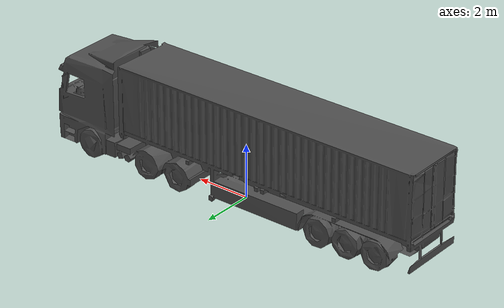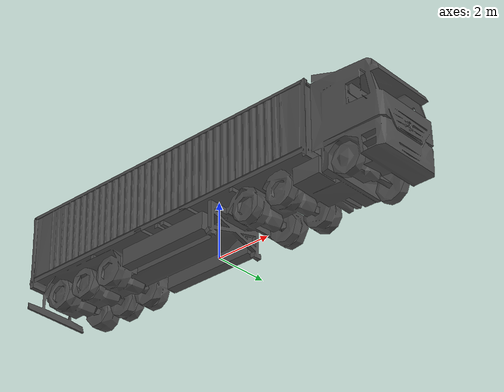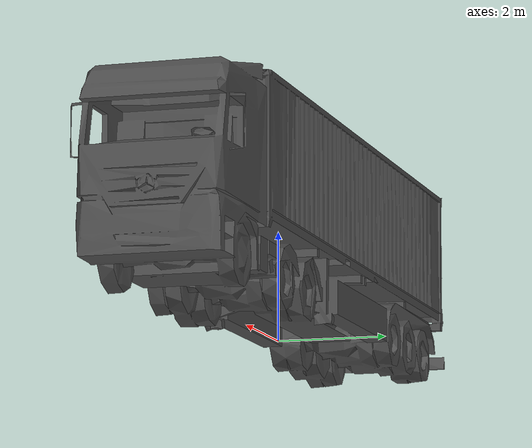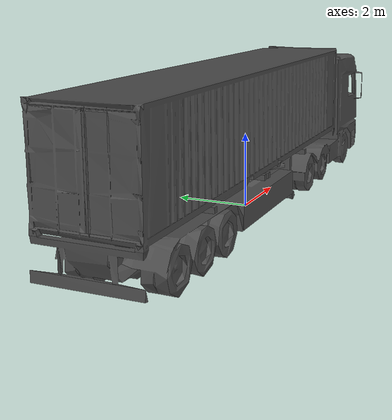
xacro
<?xml version="1.0"?>

<robot name="$(arg name)" xmlns:xacro="http://www.ros.org/wiki/xacro">

  <xacro:include filename="$(find iri_objects_description)/urdf/materials.xacro" />
  <xacro:include filename="$(find iri_objects_description)/urdf/truck/urdf.xacro" />
  <xacro:include filename="$(find iri_objects_description)/urdf/truck/gazebo.gazebo" />
  <xacro:truck_gazebo truck_name="$(arg name)"/>

</robot>

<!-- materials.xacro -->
<root xmlns:xacro="http://ros.org/wiki/xacro">
  <material name="black">
    <color rgba="0.15 0.15 0.15 1.0"/>
  </material>

  <material name="blue">
    <color rgba="0.17 0.3 0.56 1.0"/>
  </material>

  <material name="orange">
    <color rgba="0.93 0.44 0.01 1.0"/>
  </material>

  <material name="green">
    <color rgba="0.0 0.8 0.0 1.0"/>
  </material>

  <material name="grey">
    <color rgba="0.3 0.3 0.3 1.0"/>
  </material>

  <material name="grey2">
    <color rgba="0.7 0.7 0.7 1.0"/>
  </material>

  <material name="grey3">
    <color rgba="0.9 0.9 0.9 1.0"/>
  </material>

  <material name="red">
    <color rgba="0.8 0.0 0.0 1.0"/>
  </material>

  <material name="white">
    <color rgba="0.9 0.9 0.9 1.0"/>
  </material>
</root>

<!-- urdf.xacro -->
<root xmlns:xacro="http://ros.org/wiki/xacro">

  <xacro:property name="M_PI" value="3.1415926535897931" />
  <xacro:property name="LONG"   value="15.0" />
  <xacro:property name="WIDTH"  value="2.4" />
  <xacro:property name="HEIGHT" value="4.0" />

  <xacro:property name="BASE_LINK_HEIGHT" value="1.0" />

    <link name="base_footprint"/>

    <link name="base_link">
      <inertial>
        <mass value="1" />
        <origin xyz="0 0 0" />
        <inertia
          ixx="1.0" ixy="0.0" ixz="0.0"
          iyy="1.0" iyz="0.0"
          izz="1.0" />
       </inertial>
    </link>

    <joint name="base_footprint_to_base_link" type="fixed">
      <parent link="base_footprint"/>
      <child link="base_link"/>
      <origin xyz="0 0 ${BASE_LINK_HEIGHT}" rpy="0 0 0"/>
    </joint>

    <link name="body">
      <collision>
        <origin xyz="0 0 -${BASE_LINK_HEIGHT}" rpy="0 0 0"/>
        <geometry>
          <mesh filename="package://iri_objects_description/meshes/truck.stl"/>
        </geometry>
      </collision>
      <visual>
        <origin xyz="0 0 -${BASE_LINK_HEIGHT}" rpy="0 0 0"/>
        <geometry>
          <mesh filename="package://iri_objects_description/meshes/truck.stl"/>
        </geometry>
        <material name="grey"/>
      </visual>
    </link>

    <joint name="base_link_to_body" type="fixed">
      <parent link="base_link"/>
      <child link="body"/>
      <origin xyz="0 0 0.0" rpy="0 0 0"/>
    </joint>

    <link name="top"/>

    <joint name="base_link_to_top" type="fixed">
      <parent link="base_link"/>
      <child link="top"/>
      <origin xyz="0 0 ${HEIGHT-BASE_LINK_HEIGHT}" rpy="0 0 0"/>
    </joint>

    <link name="front"/>

    <joint name="base_link_to_front" type="fixed">
      <parent link="base_link"/>
      <child link="front"/>
      <origin xyz="${LONG/2.0} 0 0" rpy="0 0 0"/>
    </joint>

    <link name="back"/>

    <joint name="base_link_to_back" type="fixed">
      <parent link="base_link"/>
      <child link="back"/>
      <origin xyz="-${LONG/2.0} 0 0" rpy="0 0 ${M_PI}"/>
    </joint>

</root>
